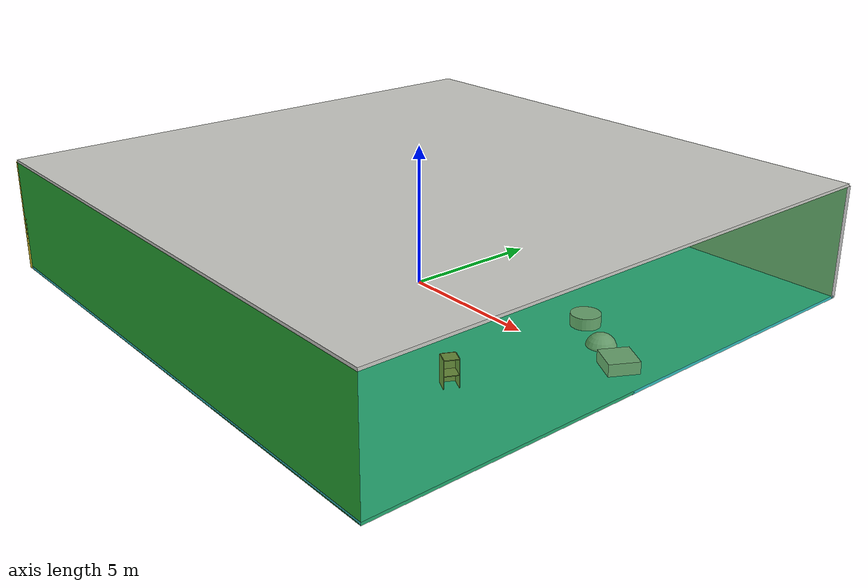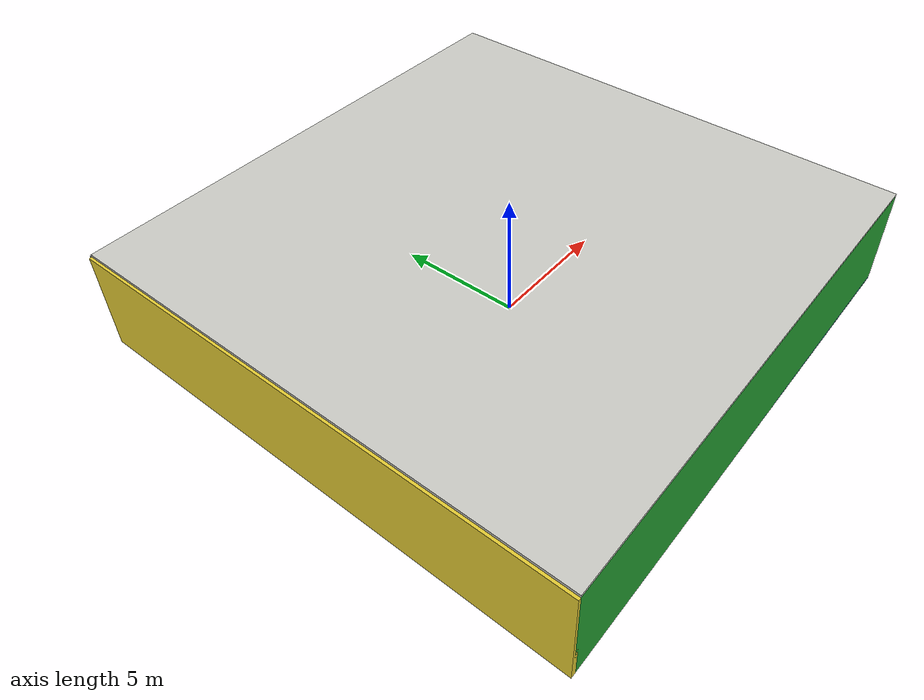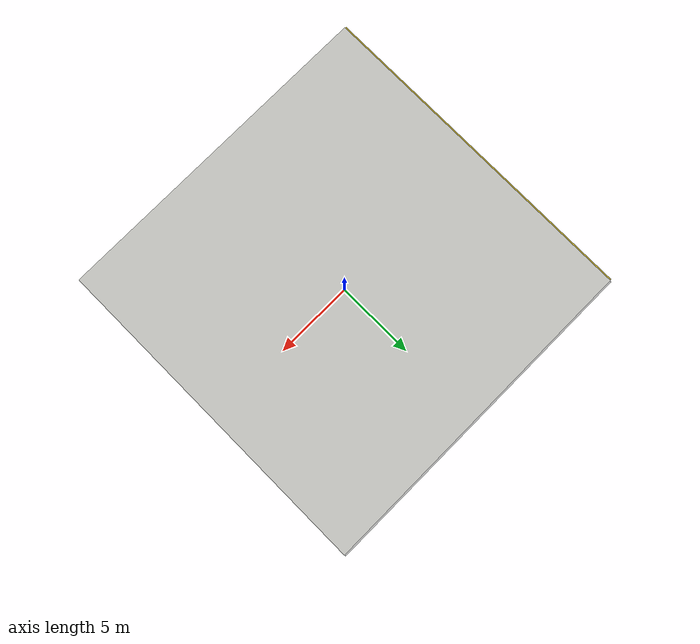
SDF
<sdf version="1.4">
 <world name="default">
  <physics type="ode">
   <max_step_size>0.001</max_step_size>
   <real_time_factor>1</real_time_factor>
   <real_time_update_rate>1000</real_time_update_rate>
   <gravity>0 0 -9.8</gravity>
  </physics>
  <scene><ambient>0.4 0.4 0.4 1</ambient><background>0.7 0.7 0.7 1</background><shadows>1</shadows></scene>
  <model name="Surrounding">
   <static>1</static>
   <link name="Ceiling">
    <collision name="Ceiling_Collision"><geometry><box><size>20 20 0.1</size></box></geometry></collision>
    <visual name="Ceiling_Visual">
     <geometry><box><size>20 20 0.1</size></box></geometry>
     <material>
      <script><uri>file://media/materials/scripts/gazebo.material</uri><name>Gazebo/CeilingTiled</name></script>
     </material>
    </visual>
    <pose>0 0 4.05 0 0 0</pose>
   </link>
   <link name="Wall_South">
    <collision name="Wall_South_Collision">
     <geometry><box><size>20 0 4</size></box></geometry>
     <pose>0 0 2 0 -0 0</pose>
    </collision>
    <visual name="Wall_South_Visual">
     <pose>0 0 2 0 -0 0</pose>
     <geometry><box><size>20 0 4</size></box></geometry>
     <material>
      <script><uri>file://media/materials/scripts/gazebo.material</uri><name>Gazebo/GreenGlow</name></script>
     </material>
    </visual>
    <velocity_decay><linear>0</linear><angular>0</angular></velocity_decay>
    <pose>0 -10 0 0 -0 0</pose>
   </link>
   <link name="Wall_East">
    <collision name="Wall_21_Collision">
     <geometry><box><size>20 0 4</size></box></geometry>
     <pose>0 0 2 0 -0 0</pose>
    </collision>
    <visual name="Wall_21_Visual">
     <pose>0 0 2 0 -0 0</pose>
     <geometry><box><size>20 0 4</size></box></geometry>
     <material>
      <script><uri>file://media/materials/scripts/gazebo.material</uri><name>Gazebo/GreenTransparent</name></script>
     </material>
    </visual>
    <velocity_decay><linear>0</linear><angular>0</angular></velocity_decay>
    <pose>10 0 0 0 -0 1.5708</pose>
   </link>
   <link name="Wall_North">
    <collision name="Wall_22_Collision">
     <geometry><box><size>20 0.2 4</size></box></geometry>
     <pose>0 0 2 0 -0 0</pose>
    </collision>
    <visual name="Wall_22_Visual">
     <pose>0 0 2 0 -0 0</pose>
     <geometry><box><size>20 0.2 4</size></box></geometry>
     <material>
      <script><uri>file://media/materials/scripts/gazebo.material</uri><name>Gazebo/Pioneer2Body</name></script>
     </material>
    </visual>
    <velocity_decay><linear>0</linear><angular>0</angular></velocity_decay>
    <pose>0 10 0 0 -0 0</pose>
   </link>
   <link name="Wall_West">
    <collision name="Wall_23_Collision">
     <geometry><box><size>20 0.2 4</size></box></geometry>
     <pose>0 0 2 0 -0 0</pose>
    </collision>
    <visual name="Wall_23_Visual">
     <pose>0 0 2 0 -0 0</pose>
     <geometry><box><size>20 0.2 4</size></box></geometry>
     <material>
      <script><uri>file://media/materials/scripts/gazebo.material</uri><name>Gazebo/ZincYellow</name></script>
     </material>
    </visual>
    <velocity_decay><linear>0</linear><angular>0</angular></velocity_decay>
    <pose>-10 0 0 0 0 -1.5708</pose>
   </link>
   <link name="Ground_link">
    <collision name="collision">
     <pose>0 0 .05 0 -0 0</pose>
     <geometry><box><size>20 20 0.1</size></box></geometry>
    </collision>
    <visual name="visual">
     <pose>0 0 .05 0 -0 0</pose>
     <geometry><box><size>20 20 0.1</size></box></geometry>
     <material>
      <script>
       <uri>file://media/materials/scripts/gazebo.material</uri>
       <name>Gazebo/TurquoiseGlowOutline</name>
      </script>
     </material>
    </visual>
   </link>
   <static>1</static>
  </model>
  <spherical_coordinates>
   <surface_model>EARTH_WGS84</surface_model>
   <latitude_deg>0</latitude_deg>
   <longitude_deg>0</longitude_deg>
   <elevation>0</elevation>
   <heading_deg>0</heading_deg>
  </spherical_coordinates>
  <light name="lightball_0" type="diffuse">
   <diffuse>0.8 0.8 0.8 1</diffuse>
   <specular>0.2 0.2 0.2 1</specular>
   <attenuation>
    <range>100</range>
    <constant>0.7</constant>
    <linear>0.01</linear>
    <quadratic>0.001</quadratic>
   </attenuation>
   <direction>-0.5 0.1 -0.9</direction>
   <pose>-3.24579725527 -4.72704702488 1.38532759028 0 0 0</pose>
  </light>
  <light name="lightball_1" type="diffuse">
   <diffuse>0.8 0.8 0.8 1</diffuse>
   <specular>0.2 0.2 0.2 1</specular>
   <attenuation>
    <range>100</range>
    <constant>0.7</constant>
    <linear>0.01</linear>
    <quadratic>0.001</quadratic>
   </attenuation>
   <direction>-0.5 0.1 -0.9</direction>
   <pose>6.4324403819 2.68951295707 2.2949205019 0 0 0</pose>
  </light>
  <light name="lightball_2" type="diffuse">
   <diffuse>0.8 0.8 0.8 1</diffuse>
   <specular>0.2 0.2 0.2 1</specular>
   <attenuation>
    <range>100</range>
    <constant>0.7</constant>
    <linear>0.01</linear>
    <quadratic>0.001</quadratic>
   </attenuation>
   <direction>-0.5 0.1 -0.9</direction>
   <pose>-4.86898497471 -4.28348088493 2.04329834735 0 0 0</pose>
  </light>
  <light name="lightball_3" type="diffuse">
   <diffuse>0.8 0.8 0.8 1</diffuse>
   <specular>0.2 0.2 0.2 1</specular>
   <attenuation>
    <range>100</range>
    <constant>0.7</constant>
    <linear>0.01</linear>
    <quadratic>0.001</quadratic>
   </attenuation>
   <direction>-0.5 0.1 -0.9</direction>
   <pose>-9.72040047542 5.37366156576 2.66847634538 0 0 0</pose>
  </light>
  <light name="lightball_4" type="diffuse">
   <diffuse>0.8 0.8 0.8 1</diffuse>
   <specular>0.2 0.2 0.2 1</specular>
   <attenuation>
    <range>100</range>
    <constant>0.7</constant>
    <linear>0.01</linear>
    <quadratic>0.001</quadratic>
   </attenuation>
   <direction>-0.5 0.1 -0.9</direction>
   <pose>-7.81119743699 -7.88032412906 1.12713839895 0 0 0</pose>
  </light>
  <light name="lightball_5" type="diffuse">
   <diffuse>0.8 0.8 0.8 1</diffuse>
   <specular>0.2 0.2 0.2 1</specular>
   <attenuation>
    <range>100</range>
    <constant>0.7</constant>
    <linear>0.01</linear>
    <quadratic>0.001</quadratic>
   </attenuation>
   <direction>-0.5 0.1 -0.9</direction>
   <pose>9.55661036254 -4.88176863398 0.562663825945 0 0 0</pose>
  </light>
  <light name="lightball_6" type="diffuse">
   <diffuse>0.8 0.8 0.8 1</diffuse>
   <specular>0.2 0.2 0.2 1</specular>
   <attenuation>
    <range>100</range>
    <constant>0.7</constant>
    <linear>0.01</linear>
    <quadratic>0.001</quadratic>
   </attenuation>
   <direction>-0.5 0.1 -0.9</direction>
   <pose>9.03104641102 -8.66610298265 2.19979048383 0 0 0</pose>
  </light>
  <light name="lightball_7" type="diffuse">
   <diffuse>0.8 0.8 0.8 1</diffuse>
   <specular>0.2 0.2 0.2 1</specular>
   <attenuation>
    <range>100</range>
    <constant>0.7</constant>
    <linear>0.01</linear>
    <quadratic>0.001</quadratic>
   </attenuation>
   <direction>-0.5 0.1 -0.9</direction>
   <pose>1.21620609664 9.96411728211 3.67249875799 0 0 0</pose>
  </light>
  <light name="lightball_8" type="diffuse">
   <diffuse>0.8 0.8 0.8 1</diffuse>
   <specular>0.2 0.2 0.2 1</specular>
   <attenuation>
    <range>100</range>
    <constant>0.7</constant>
    <linear>0.01</linear>
    <quadratic>0.001</quadratic>
   </attenuation>
   <direction>-0.5 0.1 -0.9</direction>
   <pose>2.46507961499 0.657256828471 1.49246445776 0 0 0</pose>
  </light>
  <include><uri>model://table</uri><pose>-3.4815042556 -2.36806559696 0 0 0 0.555093018371</pose></include>
  <include>
   <uri>model://textured_shapes</uri>
   <pose>-0.417468304607 2.02296691602 0 0 0 0.436151589994</pose>
  </include>
  <include><uri>model://cabinet</uri><pose>0.627427707379 2.34376640701 0 0 0 3.06769282735</pose></include>
  <include><uri>model://cabinet</uri><pose>6.41142139718 -4.16337864825 0 0 0 2.689839451</pose></include>
  <include>
   <uri>model://textured_shapes</uri>
   <pose>7.47029751655 1.09621222064 0 0 0 1.06576424902</pose>
  </include>
 </world>
</sdf>

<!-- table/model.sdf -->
<sdf version="1.5">
  <model name="table">
    <static>true</static>
    <link name="link">
      <collision name="surface">
        <pose>0 0 1.0 0 0 0</pose>
        <geometry>
          <box>
            <size>1.5 0.8 0.03</size>
          </box>
        </geometry>
        <surface>
          <friction>
            <ode>
              <mu>0.6</mu>
              <mu2>0.6</mu2>
            </ode>
          </friction>
        </surface>
      </collision>
      <visual name="visual1">
        <pose>0 0 1.0 0 0 0</pose>
        <geometry>
          <box>
            <size>1.5 0.8 0.03</size>
          </box>
        </geometry>
        <material>
          <script>
            <uri>model://media/materials/scripts/gazebo.material</uri>
            <name>Gazebo/Wood</name>
          </script>
        </material>
      </visual>
      <collision name="front_left_leg">
        <pose>0.68 0.38 0.5 0 0 0</pose>
        <geometry>
          <cylinder>
            <radius>0.02</radius>
            <length>1.0</length>
          </cylinder>
        </geometry>
      </collision>
      <visual name="front_left_leg">
        <pose>0.68 0.38 0.5 0 0 0</pose>
        <geometry>
          <cylinder>
            <radius>0.02</radius>
            <length>1.0</length>
          </cylinder>
        </geometry>
        <material>
          <script>
            <uri>model://media/materials/scripts/gazebo.material</uri>
            <name>Gazebo/Grey</name>
          </script>
        </material>
      </visual>
      <collision name="front_right_leg">
        <pose>0.68 -0.38 0.5 0 0 0</pose>
        <geometry>
          <cylinder>
            <radius>0.02</radius>
            <length>1.0</length>
          </cylinder>
        </geometry>
      </collision>
      <visual name="front_right_leg">
        <pose>0.68 -0.38 0.5 0 0 0</pose>
        <geometry>
          <cylinder>
            <radius>0.02</radius>
            <length>1.0</length>
          </cylinder>
        </geometry>
        <material>
          <script>
            <uri>model://media/materials/scripts/gazebo.material</uri>
            <name>Gazebo/Grey</name>
          </script>
        </material>
      </visual>
      <collision name="back_right_leg">
        <pose>-0.68 -0.38 0.5 0 0 0</pose>
        <geometry>
          <cylinder>
            <radius>0.02</radius>
            <length>1.0</length>
          </cylinder>
        </geometry>
      </collision>
      <visual name="back_right_leg">
        <pose>-0.68 -0.38 0.5 0 0 0</pose>
        <geometry>
          <cylinder>
            <radius>0.02</radius>
            <length>1.0</length>
          </cylinder>
        </geometry>
        <material>
          <script>
            <uri>model://media/materials/scripts/gazebo.material</uri>
            <name>Gazebo/Grey</name>
          </script>
        </material>
      </visual>
      <collision name="back_left_leg">
        <pose>-0.68 0.38 0.5 0 0 0</pose>
        <geometry>
          <cylinder>
            <radius>0.02</radius>
            <length>1.0</length>
          </cylinder>
        </geometry>
      </collision>
      <visual name="back_left_leg">
        <pose>-0.68 0.38 0.5 0 0 0</pose>
        <geometry>
          <cylinder>
            <radius>0.02</radius>
            <length>1.0</length>
          </cylinder>
        </geometry>
        <material>
          <script>
            <uri>model://media/materials/scripts/gazebo.material</uri>
            <name>Gazebo/Grey</name>
          </script>
        </material>
      </visual>
    </link>
  </model>
</sdf>

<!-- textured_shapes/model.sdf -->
<sdf version="1.6">
  <model name="textured_shapes">
    <pose>0 0 0.5 0 0 0</pose>
    <link name="box">
      <pose>0 -1.5 0 0 0 0</pose>
      <collision name="collision">
        <geometry>
          <box>
            <size>1 1 1</size>
          </box>
        </geometry>
      </collision>
      <visual name="visual">
        <geometry>
          <box>
            <size>1 1 1</size>
          </box>
        </geometry>
        <material>
          <script>
            <uri>model://../model_source/models/textured_shapes/materials/scripts</uri>
            <uri>model://../model_source/models/textured_shapes/materials/textures</uri>
            <name>TexturedShape/Squares</name>
          </script>
        </material>
      </visual>
    </link>
    <link name="sphere">
      <collision name="collision">
        <geometry>
          <sphere>
            <radius>0.5</radius>
          </sphere>
        </geometry>
      </collision>
      <visual name="visual">
        <geometry>
          <sphere>
            <radius>0.5</radius>
          </sphere>
        </geometry>
        <material>
          <script>
            <uri>model://../model_source/models/textured_shapes/materials/scripts</uri>
            <uri>model://../model_source/models/textured_shapes/materials/textures</uri>
            <name>TexturedShape/Squares</name>
          </script>
        </material>
      </visual>
    </link>
    <link name="cylinder">
      <pose>0 1.5 0 0 0 0</pose>
      <collision name="collision">
        <geometry>
          <cylinder>
            <radius>0.5</radius>
            <length>1</length>
          </cylinder>
        </geometry>
      </collision>
      <visual name="visual">
        <geometry>
          <cylinder>
            <radius>0.5</radius>
            <length>1</length>
          </cylinder>
        </geometry>
        <material>
          <script>
            <uri>model://../model_source/models/textured_shapes/materials/scripts</uri>
            <uri>model://../model_source/models/textured_shapes/materials/textures</uri>
            <name>TexturedShape/Squares</name>
          </script>
        </material>
      </visual>
    </link>
  </model>
</sdf>

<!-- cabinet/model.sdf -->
<sdf version="1.5">
  <model name="cabinet">
    <static>true</static>
    <link name="cabinet_bottom_plate">
      <inertial>
        <pose>0 0 -1 0 0 0</pose>
        <inertia>
          <ixx>2.050000</ixx>
          <ixy>0</ixy>
          <ixz>0</ixz>
          <iyy>2.050000</iyy>
          <iyz>0</iyz>
          <izz>2.050000</izz>
        </inertia>
        <mass>25.000000</mass>
      </inertial>
      <collision name="cabinet_bottom_plate_geom">
        <pose>0 0 0.010000 0 0 0</pose>
        <geometry>
          <box>
            <size>0.450000 0.450000 0.020000</size>
          </box>
        </geometry>
      </collision>
      <visual name="cabinet_bottom_plate_geom_visual">
        <pose>0 0 0.010000 0 0 0</pose>
        <geometry>
          <box>
            <size>0.450000 0.450000 0.020000</size>
          </box>
        </geometry>
        <material>
          <script>
            <uri>model://media/materials/scripts/gazebo.material</uri>
            <name>Gazebo/Wood</name>
          </script>
        </material>
      </visual>
      <collision name="cabinet_bottom_plate_geom_cabinet_back_plate">
        <pose>0.235000 0 0.510000 0 0 0</pose>
        <geometry>
          <box>
            <size>0.020000 0.450000 1.020000</size>
          </box>
        </geometry>
      </collision>
      <visual name="cabinet_bottom_plate_geom_cabinet_back_plate_visual">
        <pose>0.235000 0 0.510000 0 0 0</pose>
        <geometry>
          <box>
            <size>0.020000 0.450000 1.020000</size>
          </box>
        </geometry>
        <material>
          <script>
            <uri>model://media/materials/scripts/gazebo.material</uri>
            <name>Gazebo/Wood</name>
          </script>
        </material>
      </visual>
      <collision name="cabinet_bottom_plate_geom_cabinet_left_plate">
        <pose>0 0.235000 0.510000 0 0 0</pose>
        <geometry>
          <box>
            <size>0.450000 0.020000 1.020000</size>
          </box>
        </geometry>
      </collision>
      <visual name="cabinet_bottom_plate_geom_cabinet_left_plate_visual">
        <pose>0 0.235000 0.510000 0 0 0</pose>
        <geometry>
          <box>
            <size>0.450000 0.020000 1.020000</size>
          </box>
        </geometry>
        <material>
          <script>
            <uri>model://media/materials/scripts/gazebo.material</uri>
            <name>Gazebo/Wood</name>
          </script>
        </material>
      </visual>
      <collision name="cabinet_bottom_plate_geom_cabinet_middle_plate">
        <pose>0 0 0.510000 0 0 0</pose>
        <geometry>
          <box>
            <size>0.450000 0.450000 0.020000</size>
          </box>
        </geometry>
      </collision>
      <visual name="cabinet_bottom_plate_geom_cabinet_middle_plate_visual">
        <pose>0 0 0.510000 0 0 0</pose>
        <geometry>
          <box>
            <size>0.450000 0.450000 0.020000</size>
          </box>
        </geometry>
        <material>
          <script>
            <uri>model://media/materials/scripts/gazebo.material</uri>
            <name>Gazebo/Wood</name>
          </script>
        </material>
      </visual>
      <collision name="cabinet_bottom_plate_geom_cabinet_right_plate">
        <pose>0 -0.235000 0.510000 0 0 0</pose>
        <geometry>
          <box>
            <size>0.450000 0.020000 1.020000</size>
          </box>
        </geometry>
      </collision>
      <visual name="cabinet_bottom_plate_geom_cabinet_right_plate_visual">
        <pose>0 -0.235000 0.510000 0 0 0</pose>
        <geometry>
          <box>
            <size>0.450000 0.020000 1.020000</size>
          </box>
        </geometry>
        <material>
          <script>
            <uri>model://media/materials/scripts/gazebo.material</uri>
            <name>Gazebo/Wood</name>
          </script>
        </material>
      </visual>
      <collision name="cabinet_bottom_plate_geom_cabinet_top_plate">
        <pose>0 0 1.010000 0 0 0</pose>
        <geometry>
          <box>
            <size>0.450000 0.450000 0.020000</size>
          </box>
        </geometry>
      </collision>
      <visual name="cabinet_bottom_plate_geom_cabinet_top_plate_visual">
        <pose>0 0 1.010000 0 0 0</pose>
        <geometry>
          <box>
            <size>0.450000 0.450000 0.020000</size>
          </box>
        </geometry>
        <material>
          <script>
            <uri>model://media/materials/scripts/gazebo.material</uri>
            <name>Gazebo/Wood</name>
          </script>
        </material>
      </visual>
    </link>
  </model>
</sdf>
